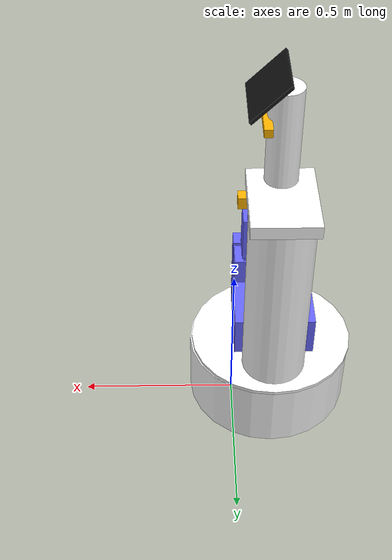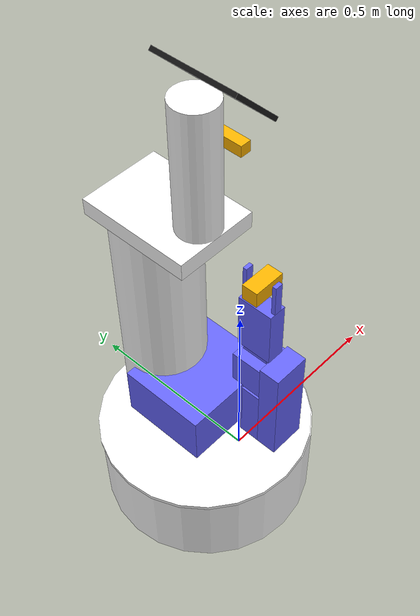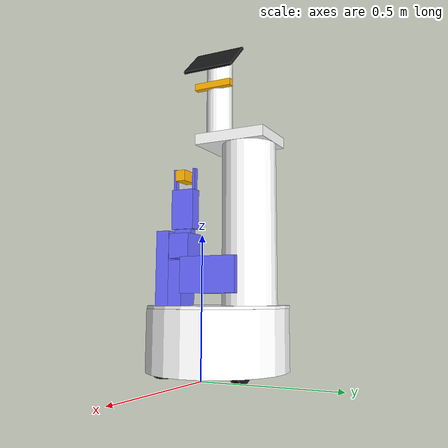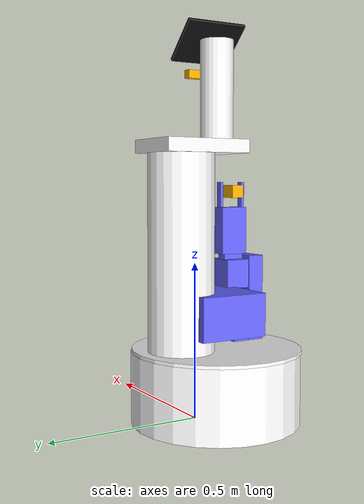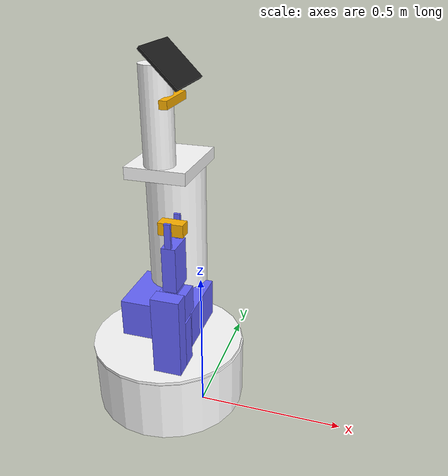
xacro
<?xml version="1.0" ?>

<robot
  xmlns:xacro="http://www.ros.org/wiki/xacro"
  name="korus"
  >

  <!-- ************************** Xacro ************************** -->
  <xacro:property name="pi" value="3.1415926535897931" />
  <xacro:property name="material_white">
    <material name="white">
      <color rgba="1 1 1 1"/>
    </material>
  </xacro:property>
  <xacro:property name="material_orange">
    <material name="orange">
      <color rgba="1.0 0.7 0.0 1"/>
    </material>
  </xacro:property>
  <xacro:property name="material_red">
    <material name="red">
      <color rgba="1.0 0.0 0.0 1"/>
    </material>
  </xacro:property>
  <xacro:property name="material_grey_blue">
    <material name="grey_blue">
      <color rgba="0.4 0.4 1.0 1"/>
    </material>
  </xacro:property>
  <xacro:property name="material_blue">
    <material name="blue">
      <color rgba="0.0 0.0 1.0 1"/>
    </material>
  </xacro:property>
  <xacro:property name="material_green">
    <material name="green">
      <color rgba="0 .8 0 1"/>
    </material>
  </xacro:property>
  <xacro:property name="material_grey">
    <material name="grey">
      <color rgba="0.7 0.7 0.7 1.0"/>
    </material>
  </xacro:property>
  <xacro:property name="material_black">
    <material name="black">
      <color rgba="0.1 0.1 0.1 1"/>
    </material>
  </xacro:property>
  <xacro:macro name="wheel" params="name length radius off_x off_y off_z type">
    <link name="${name}">
      <visual>
        <geometry>
          <cylinder length="${length}" radius="${radius}"/>
     	  </geometry>
        <origin rpy="0 ${pi/2} 0" xyz="0 0 0"/>
        <material name="black">
          <color rgba="0.1 0.1 0.1 1"/>
        </material>
      </visual>
    </link>
    <joint name="${name}" type="${type}">
      <parent link="base_link"/>
      <child link="${name}"/>
      <origin rpy="0 0 ${pi/2}" xyz="${off_x} ${off_y} ${off_z}"/>
    </joint>
  </xacro:macro>

  <!-- ************************** Base *************************** -->
  <link name="base_footprint"></link>
  <joint name="base_joint" type="fixed">
    <parent link="base_footprint"/>
    <child link="base_link"/>
    <origin rpy="0 0 0" xyz="0.0 0.0 0.075"/>
  </joint>
  <link name="base_link">
    <visual>
      <origin rpy="0 0 0" xyz="-0.12 0 0.060"/>
       <geometry>
        <cylinder length="0.22" radius="0.260"/>
      </geometry>
      <xacro:insert_block name="material_white" />
    </visual>
  </link>
  <xacro:property name="front_wheel_bias" value="0.3" />
  <xacro:property name="front_wheel_radius" value="0.075" />
  <xacro:property name="caster_wheel_bias" value="0.2" />
  <xacro:property name="caster_wheel_radius" value="0.040" />
  <xacro:wheel name="wheel_left" length="0.03" radius="${front_wheel_radius}" off_x="0.0" off_y="${front_wheel_bias/2}" off_z="0.0" type="continuous"/>
  <xacro:wheel name="wheel_right" length="0.03" radius="${front_wheel_radius}" off_x="0.0" off_y="-${front_wheel_bias/2}" off_z="0.0" type="continuous"/>
  <xacro:wheel name="caster_left" length="0.02" radius="${caster_wheel_radius}" off_x="-0.24" off_y="${caster_wheel_bias/2}" off_z="-0.035" type="fixed"/>
  <xacro:wheel name="caster_right" length="0.02" radius="${caster_wheel_radius}" off_x="-0.24" off_y="-${caster_wheel_bias/2}" off_z="-0.035" type="fixed"/>

  <!-- ************************** Body ************************** -->

  <joint name="body" type="revolute">
    <parent link="base_link"/>
    <child link="body_link"/>
    <origin rpy="0 0 0" xyz="-0.125 0.0 0.170"/>
    <axis xyz="0 0 1"/>
    <limit effort="10" lower="-${pi}" upper="${pi}" velocity="0.013"/>
  </joint>
  <link name="body_link">
    <visual>
      <origin rpy="0 0 0" xyz="0.0 0.0 0.005"/>
       <geometry>
        <cylinder length="0.01" radius="0.260"/>
      </geometry>
      <xacro:insert_block name="material_white" />
    </visual>
  </link>

  <!-- ************************** upper body ************************** -->
  <joint name="upper_body_joint" type="fixed">
    <parent link="body_link"/>
    <child link="upper_body_link"/>
    <origin rpy="0 0 0" xyz="0  0.125 0.60"/>
  </joint>
  <link name="upper_body_link">
    <visual>
      <geometry>
        <box size="0.2 0.275 0.04" />
      </geometry>
      <origin xyz="0.0 -0.0375 0.02" rpy="0 0 0" />
      <xacro:insert_block name="material_white"/>
    </visual>
  </link>

  <!-- ************************** Head ************************** -->
  <joint name="head_joint" type="revolute">
    <parent link="upper_body_link"/>
    <child link="head_link"/>
    <origin rpy="0 0 0" xyz="0  -0.125 0.04"/>
    <axis xyz="0 0 1"/>
    <limit effort="10" lower="-${pi/2}" upper="${pi/2}" velocity="0.013"/>
  </joint>
  <link name="head_link">
    <visual>
      <geometry>
        <cylinder length="0.30" radius="0.05"/>
      </geometry>
      <origin rpy="0 0 0" xyz="0.0 0.0 0.15"/>
      <xacro:insert_block name="material_white" />
    </visual>
  </link>

  <!-- *********************** Asus Xtion ************************ -->
  <joint name="asus_tilt_joint" type="revolute">
    <parent link="head_link"/>
    <child link="asus_link"/>
    <origin rpy="0 0 -${pi/2}" xyz="0.05 0.0 0.20"/>
    <axis xyz="1 0 0"/>
    <limit effort="10" lower="-${pi/2}" upper="${pi/2}" velocity="0.013"/>
  </joint>
  <link name="asus_link">
    <visual>
      <geometry>
        <box size="0.025 0.15 0.025" />
      </geometry>
      <origin rpy="0 0 ${-pi/2}" xyz="0.0 0.0 0.0"/>
      <xacro:insert_block name="material_orange" />
    </visual>
  </link>

  <!-- ************************ Tablet ************************* -->
  <joint name="tablet_joint" type="fixed">
    <parent link="head_link"/>
    <child link="tablet_link"/>
    <origin rpy="0 0 0" xyz="0.05 0.0 0.30"/>
  </joint>
  <link name="tablet_link">
    <visual>
      <geometry>
        <box size="0.01 0.20 0.15" />
      </geometry>
      <origin rpy="0.0 -${pi/4} 0.0" xyz="0.0 0.0 0.0"/>
      <xacro:insert_block name="material_black" />
    </visual>
  </link>

  <!-- ************************** Arm *************************** -->
  <joint name="torso_turn" type="fixed">
    <parent link="body_link"/>
    <child link="torso_turn_link"/>
    <origin xyz="0.0 0.125 0.005" rpy="0 0 0"/>
  </joint>
  <link name="torso_turn_link">
    <visual>
      <geometry>
        <cylinder length="0.60" radius="0.1"/>
      </geometry>
      <origin rpy="0 0 0" xyz="0 0 0.3"/>
      <xacro:insert_block name="material_white" />
    </visual>
  </link>

  <joint name="torso_lift_offset" type="fixed">
    <parent link="torso_turn_link"/>
    <child link="torso_lift_offset_link"/>
    <origin xyz="0 0 0.114" rpy="0 0 0"/>
    <axis xyz="0 0 1"/>
  </joint>
  <link name="torso_lift_offset_link"></link>

  <joint name="torso_lift" type="prismatic">
    <parent link="torso_lift_offset_link"/>
    <child link="torso_lift_link"/>
    <origin xyz="0 0 0" rpy="0 0 ${pi/2}"/>
    <axis xyz="0 0 1"/>
    <limit effort="10" lower="0.0" upper="0.16" velocity="0.5"/>
  </joint>
  <link name="torso_lift_link">
    <visual>
      <geometry>
        <box size="0.2185 0.25 0.13"/>
      </geometry>
      <origin xyz="-0.10925 0.0 0.0" rpy="0 0 0"/>
      <xacro:insert_block name="material_grey_blue" />
    </visual>
  </link>

  <joint name="shoulder_roll" type="revolute">
    <parent link="torso_lift_link"/>
    <child link="shoulder_roll_link"/>
    <origin xyz="-0.241 -0.076 0" rpy="${pi} ${pi/2} 0.0"/>
    <axis xyz="0 1 0"/>
    <limit effort="10" lower="-${pi}" upper="${pi}" velocity="0.5"/>
  </joint>
  <link name="shoulder_roll_link">
  </link>

  <joint name="shoulder_pitch" type="revolute">
    <parent link="shoulder_roll_link"/>
    <child link="shoulder_pitch_link"/>
    <origin xyz="0.0 0.0 0.0" rpy="0.0 0.0 0.0"/>
    <axis xyz="0 0 1"/>
    <limit effort="10" lower="-${pi}" upper="${pi}" velocity="0.013"/>
  </joint>
  <link name="shoulder_pitch_link">
    <visual>
      <geometry>
        <box size="0.270 0.093 0.055"/>
      </geometry>
      <origin xyz="0.081 0.0 0.0" rpy="0 0 0"/>
      <xacro:insert_block name="material_grey_blue" />
    </visual>
  </link>

  <joint name="elbow_pitch" type="revolute">
    <parent link="shoulder_pitch_link"/>
    <child link="elbow_pitch_link"/>
    <origin xyz="0.162 0.0 0.045" rpy="0 0 3.141592"/>
    <axis xyz="0 0 1"/>
    <limit effort="10" lower="-${pi}" upper="${pi}" velocity="0.013"/>
  </joint>
  <link name="elbow_pitch_link">
    <visual>
      <geometry>
        <box size="0.380 0.093 0.053"/>
      </geometry>
      <origin xyz="0.134 0.00 0.009" rpy="0 0 0"/>
      <xacro:insert_block name="material_grey_blue" />
    </visual>
  </link>

  <joint name="wrist_pitch" type="revolute">
    <parent link="elbow_pitch_link"/>
    <child link="wrist_pitch_link"/>
    <origin xyz="0.268 0.0 -0.058" rpy="0 0 0"/>
    <axis xyz="0 0 1"/>
    <limit effort="10" lower="-1.7453" upper="1.7453" velocity="0.5"/>
  </joint>
  <link name="wrist_pitch_link">
    <visual>
      <geometry>
        <box size="0.09 0.09 0.081"/>
      </geometry>
      <origin xyz="0.0 0.0 0.0" rpy="0 0 0"/>
      <xacro:insert_block name="material_grey_blue" />
    </visual>
  </link>

  <joint name="wrist_roll" type="revolute">
    <parent link="wrist_pitch_link"/>
    <child link="wrist_roll_link"/>
    <origin xyz="0.045 0 0" rpy="0 ${pi/2} 0.0"/>
    <axis xyz="0 0 1"/>
    <limit effort="10" lower="-${pi}" upper="${pi}" velocity="0.013"/>
  </joint>
  <link name="wrist_roll_link">
    <visual>
      <geometry>
        <box size="0.068 0.034 0.068"/>
      </geometry>
      <origin xyz="0.0 0.0 0.034" rpy="0 0 0"/>
      <xacro:insert_block name="material_grey_blue" />
    </visual>
  </link>

  <joint name="wrist_yaw" type="revolute">
    <parent link="wrist_roll_link"/>
    <child link="wrist_yaw_link"/>
    <origin xyz="0 0 0.034" rpy="${pi/2} -${pi/2} 0.0"/>
    <axis xyz="0 0 1"/>
    <limit effort="10" lower="-1.6232" upper="1.6232" velocity="0.5"/>
  </joint>
  <link name="wrist_yaw_link">
      <visual>
      <geometry>
        <box size="0.148 0.09 0.045"/>
      </geometry>
      <origin xyz="0.057 0.0 0.0" rpy="0 0 0"/>
      <xacro:insert_block name="material_grey_blue" />
    </visual>
  </link>

<!--   Endeffector (gripper)  -->
  <joint name="gripper_palm" type="fixed">
    <parent link="wrist_yaw_link"/>
    <child link="gripper_palm_link"/>
    <origin xyz="0.131 0 0" rpy="0.0 0.0 0.0"/>
    <axis xyz="0 0 1"/>
    <limit effort="10" lower="-1.6232" upper="1.6232" velocity="0.5"/>
  </joint>
  <link name="gripper_palm_link">
  </link>

  <!-- center of the volume covered by the fingers -->
  <joint name="gripper_center" type="fixed">
    <parent link="wrist_yaw_link"/>
    <child link="gripper_center_link"/>
    <origin xyz="0.181 0 0" rpy="0 0 0"/>
  </joint>
  <link name="gripper_center_link">
    <visual>
      <geometry>
        <box size="0.04 0.04 0.08"/>
      </geometry>
      <origin xyz="0.0 0.0 0.0" rpy="0 0 0"/>
      <xacro:insert_block name="material_orange" />
    </visual>
  </link>

  <joint name="gripper_left_finger_joint" type="prismatic">
    <parent link="wrist_yaw_link"/>
    <child link="gripper_left_finger_tip_link"/>
    <origin xyz="0.131 -0.04 0.0" rpy="0.0 0.0 0.0"/>
    <axis xyz="0 1 0"/>
    <limit effort="10" lower="0.0" upper="0.04" velocity="0.5"/>
  </joint>
  <link name="gripper_left_finger_tip_link">
      <visual>
      <geometry>
        <box size="0.08 0.02 0.01"/>
      </geometry>
      <origin xyz="0.04 0.0 0.0" rpy="${pi/2} 0 0"/>
      <xacro:insert_block name="material_grey_blue" />
    </visual>
  </link>

  <joint name="gripper_right_finger_joint" type="prismatic">
    <parent link="wrist_yaw_link"/>
    <child link="gripper_right_finger_tip_link"/>
    <origin xyz="0.131 0.04 0.0" rpy="${pi} 0.0 0.0"/>
    <axis xyz="0 1 0"/>
    <limit effort="10" lower="0.0" upper="0.04" velocity="0.5"/>
  </joint>
  <link name="gripper_right_finger_tip_link">
      <visual>
      <geometry>
        <box size="0.08 0.02 0.01"/>
      </geometry>
      <origin xyz="0.04 0.0 0.0" rpy="${pi/2} 0 0"/>
      <xacro:insert_block name="material_grey_blue" />
    </visual>
  </link>

</robot>
